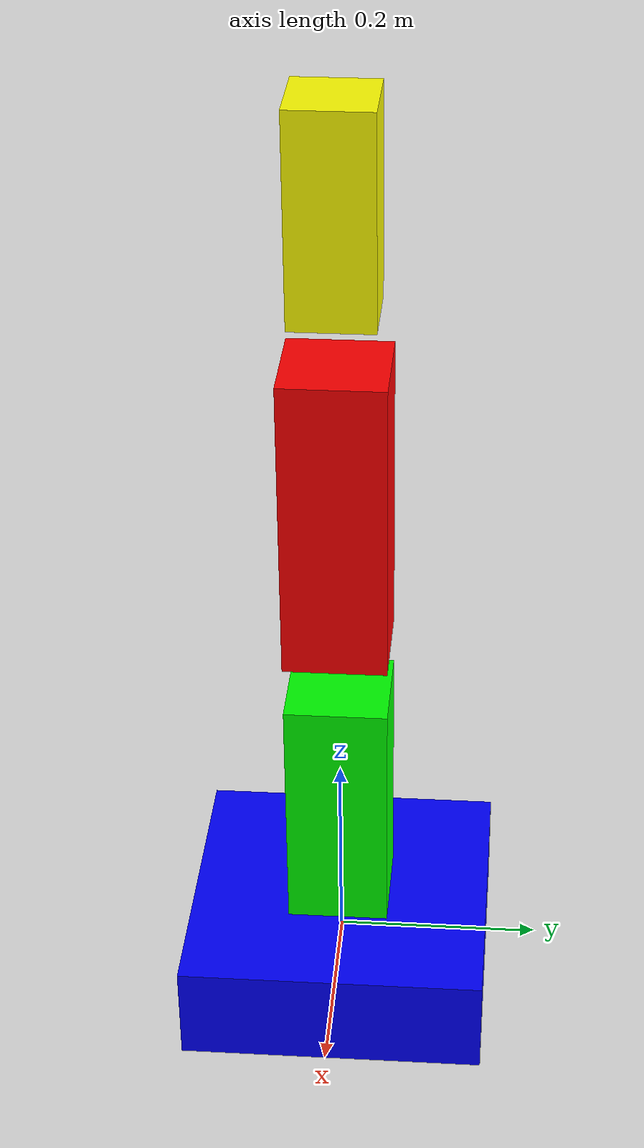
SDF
<?xml version="1.0"?>
<sdf version="1.9">
  <model name="arm3dof">
    <static>false</static>

    <!-- Base -->
    <link name="base_link">
      <pose>0 0 0 0 0 0</pose>
      <collision name="base_collision">
        <geometry><box><size>0.3 0.3 0.1</size></box></geometry>
      </collision>
      <visual name="base_visual">
        <geometry><box><size>0.3 0.3 0.1</size></box></geometry>
        <material><ambient>0 0 1 1</ambient></material>
      </visual>
      <inertial>
        <mass>1.0</mass>
        <inertia>
          <ixx>0.01</ixx><iyy>0.01</iyy><izz>0.01</izz>
          <ixy>0.0</ixy><ixz>0.0</ixz><iyz>0.0</iyz>
        </inertia>
      </inertial>
    </link>

    <!-- Shoulder -->
    <link name="shoulder_link">
      <pose>0 0 0.1 0 0 0</pose>
      <collision name="shoulder_collision">
        <geometry><box><size>0.1 0.1 0.4</size></box></geometry>
      </collision>
      <visual name="shoulder_visual">
        <geometry><box><size>0.1 0.1 0.4</size></box></geometry>
        <material><ambient>0 1 0 1</ambient></material>
      </visual>
      <inertial>
        <mass>0.5</mass>
        <inertia>
          <ixx>0.005</ixx><iyy>0.005</iyy><izz>0.005</izz>
          <ixy>0.0</ixy><ixz>0.0</ixz><iyz>0.0</iyz>
        </inertia>
      </inertial>
    </link>

    <!-- Elbow -->
    <link name="elbow_link">
      <pose>0 0 0.5 0 0 0</pose>
      <collision name="elbow_collision">
        <geometry><box><size>0.1 0.1 0.3</size></box></geometry>
      </collision>
      <visual name="elbow_visual">
        <geometry><box><size>0.1 0.1 0.3</size></box></geometry>
        <material><ambient>1 0 0 1</ambient></material>
      </visual>
      <inertial>
        <mass>0.3</mass>
        <inertia>
          <ixx>0.003</ixx><iyy>0.003</iyy><izz>0.003</izz>
          <ixy>0.0</ixy><ixz>0.0</ixz><iyz>0.0</iyz>
        </inertia>
      </inertial>
    </link>

    <!-- Wrist -->
    <link name="wrist_link">
      <pose>0 0 0.8 0 0 0</pose>
      <collision name="wrist_collision">
        <geometry><box><size>0.08 0.08 0.2</size></box></geometry>
      </collision>
      <visual name="wrist_visual">
        <geometry><box><size>0.08 0.08 0.2</size></box></geometry>
        <material><ambient>1 1 0 1</ambient></material>
      </visual>
      <inertial>
        <mass>0.2</mass>
        <inertia>
          <ixx>0.002</ixx><iyy>0.002</iyy><izz>0.002</izz>
          <ixy>0.0</ixy><ixz>0.0</ixz><iyz>0.0</iyz>
        </inertia>
      </inertial>
    </link>

    <!-- Joints -->
    <joint name="j1_base_yaw" type="revolute">
      <parent>base_link</parent>
      <child>shoulder_link</child>
      <pose>0 0 0.05 0 0 0</pose>
      <axis>
        <xyz>0 0 1</xyz>
        <limit><lower>-3.14</lower><upper>3.14</upper></limit>
        <dynamics><damping>0.1</damping></dynamics>
      </axis>
    </joint>

    <joint name="j2_shoulder" type="revolute">
      <parent>shoulder_link</parent>
      <child>elbow_link</child>
      <pose>0 0 0.2 0 0 0</pose>
      <axis>
        <xyz>0 1 0</xyz>
        <limit><lower>-1.57</lower><upper>1.57</upper></limit>
        <dynamics><damping>0.05</damping></dynamics>
      </axis>
    </joint>

    <joint name="j3_elbow" type="revolute">
      <parent>elbow_link</parent>
      <child>wrist_link</child>
      <pose>0 0 0.15 0 0 0</pose>
      <axis>
        <xyz>0 1 0</xyz>
        <limit><lower>-1.57</lower><upper>1.57</upper></limit>
        <dynamics><damping>0.05</damping></dynamics>
      </axis>
    </joint>

    <!-- Correct Gazebo Sim ↔ ros2_control bridge -->
    <plugin name="gz_ros2_control" filename="libgz_ros2_control-system.so">
      <!-- relative to this model.sdf -->
      <parameters>../../config/ros2_control.yaml</parameters>
    </plugin>
  </model>
</sdf>
